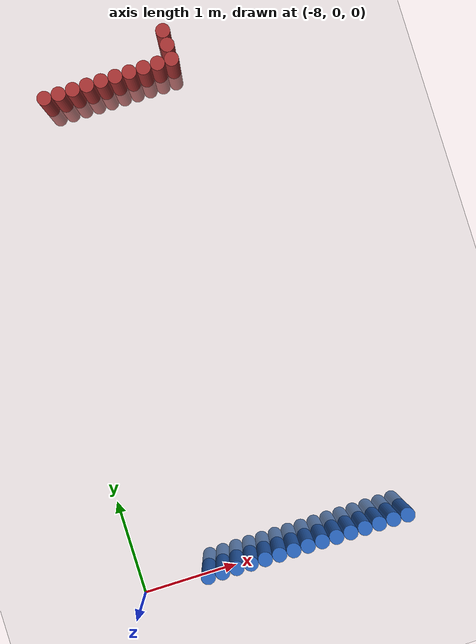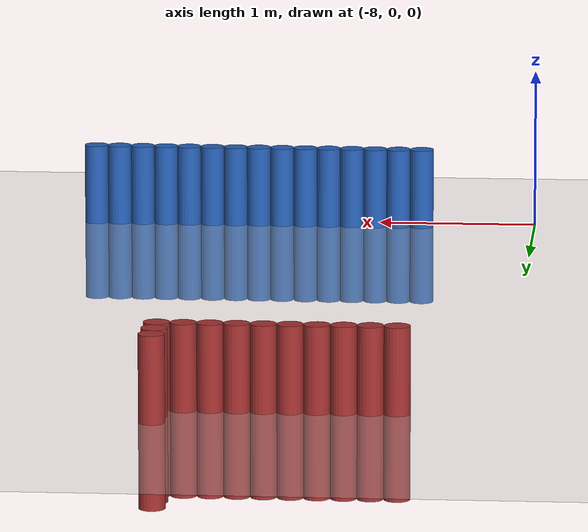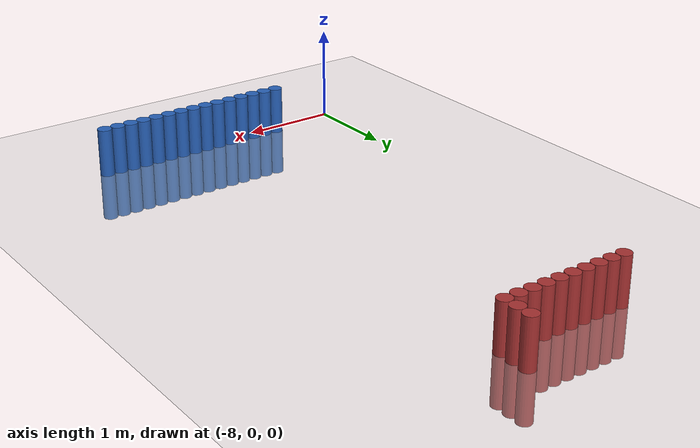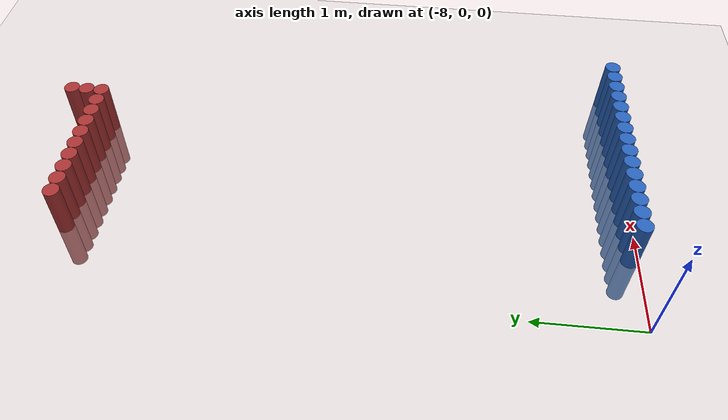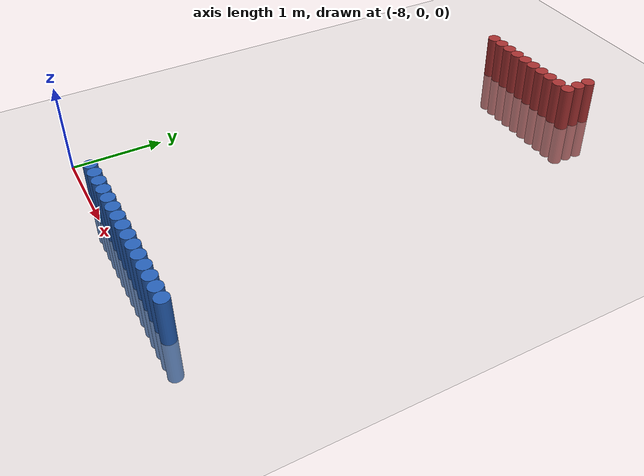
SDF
<sdf version="1.6">
 <world name="default">
  <model name="ground_plane">
   <static>1</static>
   <link name="link">
    <collision name="collision">
     <geometry><plane><normal>0 0 1</normal><size>100 100</size></plane></geometry>
     <surface><friction><ode><mu>100</mu><mu2>50</mu2></ode></friction></surface>
    </collision>
    <visual name="visual">
     <cast_shadows>0</cast_shadows>
     <geometry><plane><normal>0 0 1</normal><size>100 100</size></plane></geometry>
     <material>
      <script><uri>file://media/materials/scripts/gazebo.material</uri><name>Gazebo/Grey</name></script>
     </material>
    </visual>
   </link>
  </model>
  <model name="unit_cylinder_34">
   <static>1</static>
   <pose>-5.175000 0.075000 0.000000 0.000000 0.000000 0.000000</pose>
   <link name="link">
    <inertial>
     <mass>1</mass>
     <inertia><ixx>0.145833</ixx><ixy>0</ixy><ixz>0</ixz><iyy>0.145833</iyy><iyz>0</iyz><izz>0.125</izz></inertia>
    </inertial>
    <collision name="collision">
     <geometry><cylinder><radius>0.075000</radius><length>1</length></cylinder></geometry>
    </collision>
    <visual name="visual">
     <geometry><cylinder><radius>0.075000</radius><length>1</length></cylinder></geometry>
     <material>
      <ambient>0.152000 0.379000 0.720000 1</ambient>
      <diffuse>0.152000 0.379000 0.720000 1</diffuse>
     </material>
     <material>
      <script><name>Gazebo/Grey</name><uri>file://media/materials/scripts/gazebo.material</uri></script>
     </material>
    </visual>
   </link>
  </model>
  <model name="unit_cylinder_35">
   <static>1</static>
   <pose>-5.325000 0.075000 0.000000 0.000000 0.000000 0.000000</pose>
   <link name="link">
    <inertial>
     <mass>1</mass>
     <inertia><ixx>0.145833</ixx><ixy>0</ixy><ixz>0</ixz><iyy>0.145833</iyy><iyz>0</iyz><izz>0.125</izz></inertia>
    </inertial>
    <collision name="collision">
     <geometry><cylinder><radius>0.075000</radius><length>1</length></cylinder></geometry>
    </collision>
    <visual name="visual">
     <geometry><cylinder><radius>0.075000</radius><length>1</length></cylinder></geometry>
     <material>
      <ambient>0.152000 0.379000 0.720000 1</ambient>
      <diffuse>0.152000 0.379000 0.720000 1</diffuse>
     </material>
     <material>
      <script><name>Gazebo/Grey</name><uri>file://media/materials/scripts/gazebo.material</uri></script>
     </material>
    </visual>
   </link>
  </model>
  <model name="unit_cylinder_36">
   <static>1</static>
   <pose>-5.475000 0.075000 0.000000 0.000000 0.000000 0.000000</pose>
   <link name="link">
    <inertial>
     <mass>1</mass>
     <inertia><ixx>0.145833</ixx><ixy>0</ixy><ixz>0</ixz><iyy>0.145833</iyy><iyz>0</iyz><izz>0.125</izz></inertia>
    </inertial>
    <collision name="collision">
     <geometry><cylinder><radius>0.075000</radius><length>1</length></cylinder></geometry>
    </collision>
    <visual name="visual">
     <geometry><cylinder><radius>0.075000</radius><length>1</length></cylinder></geometry>
     <material>
      <ambient>0.152000 0.379000 0.720000 1</ambient>
      <diffuse>0.152000 0.379000 0.720000 1</diffuse>
     </material>
     <material>
      <script><name>Gazebo/Grey</name><uri>file://media/materials/scripts/gazebo.material</uri></script>
     </material>
    </visual>
   </link>
  </model>
  <model name="unit_cylinder_37">
   <static>1</static>
   <pose>-5.625000 0.075000 0.000000 0.000000 0.000000 0.000000</pose>
   <link name="link">
    <inertial>
     <mass>1</mass>
     <inertia><ixx>0.145833</ixx><ixy>0</ixy><ixz>0</ixz><iyy>0.145833</iyy><iyz>0</iyz><izz>0.125</izz></inertia>
    </inertial>
    <collision name="collision">
     <geometry><cylinder><radius>0.075000</radius><length>1</length></cylinder></geometry>
    </collision>
    <visual name="visual">
     <geometry><cylinder><radius>0.075000</radius><length>1</length></cylinder></geometry>
     <material>
      <ambient>0.152000 0.379000 0.720000 1</ambient>
      <diffuse>0.152000 0.379000 0.720000 1</diffuse>
     </material>
     <material>
      <script><name>Gazebo/Grey</name><uri>file://media/materials/scripts/gazebo.material</uri></script>
     </material>
    </visual>
   </link>
  </model>
  <model name="unit_cylinder_38">
   <static>1</static>
   <pose>-5.775000 0.075000 0.000000 0.000000 0.000000 0.000000</pose>
   <link name="link">
    <inertial>
     <mass>1</mass>
     <inertia><ixx>0.145833</ixx><ixy>0</ixy><ixz>0</ixz><iyy>0.145833</iyy><iyz>0</iyz><izz>0.125</izz></inertia>
    </inertial>
    <collision name="collision">
     <geometry><cylinder><radius>0.075000</radius><length>1</length></cylinder></geometry>
    </collision>
    <visual name="visual">
     <geometry><cylinder><radius>0.075000</radius><length>1</length></cylinder></geometry>
     <material>
      <ambient>0.152000 0.379000 0.720000 1</ambient>
      <diffuse>0.152000 0.379000 0.720000 1</diffuse>
     </material>
     <material>
      <script><name>Gazebo/Grey</name><uri>file://media/materials/scripts/gazebo.material</uri></script>
     </material>
    </visual>
   </link>
  </model>
  <model name="unit_cylinder_39">
   <static>1</static>
   <pose>-5.925000 0.075000 0.000000 0.000000 0.000000 0.000000</pose>
   <link name="link">
    <inertial>
     <mass>1</mass>
     <inertia><ixx>0.145833</ixx><ixy>0</ixy><ixz>0</ixz><iyy>0.145833</iyy><iyz>0</iyz><izz>0.125</izz></inertia>
    </inertial>
    <collision name="collision">
     <geometry><cylinder><radius>0.075000</radius><length>1</length></cylinder></geometry>
    </collision>
    <visual name="visual">
     <geometry><cylinder><radius>0.075000</radius><length>1</length></cylinder></geometry>
     <material>
      <ambient>0.152000 0.379000 0.720000 1</ambient>
      <diffuse>0.152000 0.379000 0.720000 1</diffuse>
     </material>
     <material>
      <script><name>Gazebo/Grey</name><uri>file://media/materials/scripts/gazebo.material</uri></script>
     </material>
    </visual>
   </link>
  </model>
  <model name="unit_cylinder_40">
   <static>1</static>
   <pose>-6.075000 0.075000 0.000000 0.000000 0.000000 0.000000</pose>
   <link name="link">
    <inertial>
     <mass>1</mass>
     <inertia><ixx>0.145833</ixx><ixy>0</ixy><ixz>0</ixz><iyy>0.145833</iyy><iyz>0</iyz><izz>0.125</izz></inertia>
    </inertial>
    <collision name="collision">
     <geometry><cylinder><radius>0.075000</radius><length>1</length></cylinder></geometry>
    </collision>
    <visual name="visual">
     <geometry><cylinder><radius>0.075000</radius><length>1</length></cylinder></geometry>
     <material>
      <ambient>0.152000 0.379000 0.720000 1</ambient>
      <diffuse>0.152000 0.379000 0.720000 1</diffuse>
     </material>
     <material>
      <script><name>Gazebo/Grey</name><uri>file://media/materials/scripts/gazebo.material</uri></script>
     </material>
    </visual>
   </link>
  </model>
  <model name="unit_cylinder_41">
   <static>1</static>
   <pose>-6.225000 0.075000 0.000000 0.000000 0.000000 0.000000</pose>
   <link name="link">
    <inertial>
     <mass>1</mass>
     <inertia><ixx>0.145833</ixx><ixy>0</ixy><ixz>0</ixz><iyy>0.145833</iyy><iyz>0</iyz><izz>0.125</izz></inertia>
    </inertial>
    <collision name="collision">
     <geometry><cylinder><radius>0.075000</radius><length>1</length></cylinder></geometry>
    </collision>
    <visual name="visual">
     <geometry><cylinder><radius>0.075000</radius><length>1</length></cylinder></geometry>
     <material>
      <ambient>0.152000 0.379000 0.720000 1</ambient>
      <diffuse>0.152000 0.379000 0.720000 1</diffuse>
     </material>
     <material>
      <script><name>Gazebo/Grey</name><uri>file://media/materials/scripts/gazebo.material</uri></script>
     </material>
    </visual>
   </link>
  </model>
  <model name="unit_cylinder_42">
   <static>1</static>
   <pose>-6.375000 0.075000 0.000000 0.000000 0.000000 0.000000</pose>
   <link name="link">
    <inertial>
     <mass>1</mass>
     <inertia><ixx>0.145833</ixx><ixy>0</ixy><ixz>0</ixz><iyy>0.145833</iyy><iyz>0</iyz><izz>0.125</izz></inertia>
    </inertial>
    <collision name="collision">
     <geometry><cylinder><radius>0.075000</radius><length>1</length></cylinder></geometry>
    </collision>
    <visual name="visual">
     <geometry><cylinder><radius>0.075000</radius><length>1</length></cylinder></geometry>
     <material>
      <ambient>0.152000 0.379000 0.720000 1</ambient>
      <diffuse>0.152000 0.379000 0.720000 1</diffuse>
     </material>
     <material>
      <script><name>Gazebo/Grey</name><uri>file://media/materials/scripts/gazebo.material</uri></script>
     </material>
    </visual>
   </link>
  </model>
  <model name="unit_cylinder_43">
   <static>1</static>
   <pose>-6.525000 0.075000 0.000000 0.000000 0.000000 0.000000</pose>
   <link name="link">
    <inertial>
     <mass>1</mass>
     <inertia><ixx>0.145833</ixx><ixy>0</ixy><ixz>0</ixz><iyy>0.145833</iyy><iyz>0</iyz><izz>0.125</izz></inertia>
    </inertial>
    <collision name="collision">
     <geometry><cylinder><radius>0.075000</radius><length>1</length></cylinder></geometry>
    </collision>
    <visual name="visual">
     <geometry><cylinder><radius>0.075000</radius><length>1</length></cylinder></geometry>
     <material>
      <ambient>0.152000 0.379000 0.720000 1</ambient>
      <diffuse>0.152000 0.379000 0.720000 1</diffuse>
     </material>
     <material>
      <script><name>Gazebo/Grey</name><uri>file://media/materials/scripts/gazebo.material</uri></script>
     </material>
    </visual>
   </link>
  </model>
  <model name="unit_cylinder_44">
   <static>1</static>
   <pose>-6.675000 0.075000 0.000000 0.000000 0.000000 0.000000</pose>
   <link name="link">
    <inertial>
     <mass>1</mass>
     <inertia><ixx>0.145833</ixx><ixy>0</ixy><ixz>0</ixz><iyy>0.145833</iyy><iyz>0</iyz><izz>0.125</izz></inertia>
    </inertial>
    <collision name="collision">
     <geometry><cylinder><radius>0.075000</radius><length>1</length></cylinder></geometry>
    </collision>
    <visual name="visual">
     <geometry><cylinder><radius>0.075000</radius><length>1</length></cylinder></geometry>
     <material>
      <ambient>0.152000 0.379000 0.720000 1</ambient>
      <diffuse>0.152000 0.379000 0.720000 1</diffuse>
     </material>
     <material>
      <script><name>Gazebo/Grey</name><uri>file://media/materials/scripts/gazebo.material</uri></script>
     </material>
    </visual>
   </link>
  </model>
  <model name="unit_cylinder_45">
   <static>1</static>
   <pose>-6.825000 0.075000 0.000000 0.000000 0.000000 0.000000</pose>
   <link name="link">
    <inertial>
     <mass>1</mass>
     <inertia><ixx>0.145833</ixx><ixy>0</ixy><ixz>0</ixz><iyy>0.145833</iyy><iyz>0</iyz><izz>0.125</izz></inertia>
    </inertial>
    <collision name="collision">
     <geometry><cylinder><radius>0.075000</radius><length>1</length></cylinder></geometry>
    </collision>
    <visual name="visual">
     <geometry><cylinder><radius>0.075000</radius><length>1</length></cylinder></geometry>
     <material>
      <ambient>0.152000 0.379000 0.720000 1</ambient>
      <diffuse>0.152000 0.379000 0.720000 1</diffuse>
     </material>
     <material>
      <script><name>Gazebo/Grey</name><uri>file://media/materials/scripts/gazebo.material</uri></script>
     </material>
    </visual>
   </link>
  </model>
  <model name="unit_cylinder_46">
   <static>1</static>
   <pose>-6.975000 0.075000 0.000000 0.000000 0.000000 0.000000</pose>
   <link name="link">
    <inertial>
     <mass>1</mass>
     <inertia><ixx>0.145833</ixx><ixy>0</ixy><ixz>0</ixz><iyy>0.145833</iyy><iyz>0</iyz><izz>0.125</izz></inertia>
    </inertial>
    <collision name="collision">
     <geometry><cylinder><radius>0.075000</radius><length>1</length></cylinder></geometry>
    </collision>
    <visual name="visual">
     <geometry><cylinder><radius>0.075000</radius><length>1</length></cylinder></geometry>
     <material>
      <ambient>0.152000 0.379000 0.720000 1</ambient>
      <diffuse>0.152000 0.379000 0.720000 1</diffuse>
     </material>
     <material>
      <script><name>Gazebo/Grey</name><uri>file://media/materials/scripts/gazebo.material</uri></script>
     </material>
    </visual>
   </link>
  </model>
  <model name="unit_cylinder_47">
   <static>1</static>
   <pose>-7.125000 0.075000 0.000000 0.000000 0.000000 0.000000</pose>
   <link name="link">
    <inertial>
     <mass>1</mass>
     <inertia><ixx>0.145833</ixx><ixy>0</ixy><ixz>0</ixz><iyy>0.145833</iyy><iyz>0</iyz><izz>0.125</izz></inertia>
    </inertial>
    <collision name="collision">
     <geometry><cylinder><radius>0.075000</radius><length>1</length></cylinder></geometry>
    </collision>
    <visual name="visual">
     <geometry><cylinder><radius>0.075000</radius><length>1</length></cylinder></geometry>
     <material>
      <ambient>0.152000 0.379000 0.720000 1</ambient>
      <diffuse>0.152000 0.379000 0.720000 1</diffuse>
     </material>
     <material>
      <script><name>Gazebo/Grey</name><uri>file://media/materials/scripts/gazebo.material</uri></script>
     </material>
    </visual>
   </link>
  </model>
  <model name="unit_cylinder_48">
   <static>1</static>
   <pose>-7.275000 0.075000 0.000000 0.000000 0.000000 0.000000</pose>
   <link name="link">
    <inertial>
     <mass>1</mass>
     <inertia><ixx>0.145833</ixx><ixy>0</ixy><ixz>0</ixz><iyy>0.145833</iyy><iyz>0</iyz><izz>0.125</izz></inertia>
    </inertial>
    <collision name="collision">
     <geometry><cylinder><radius>0.075000</radius><length>1</length></cylinder></geometry>
    </collision>
    <visual name="visual">
     <geometry><cylinder><radius>0.075000</radius><length>1</length></cylinder></geometry>
     <material>
      <ambient>0.152000 0.379000 0.720000 1</ambient>
      <diffuse>0.152000 0.379000 0.720000 1</diffuse>
     </material>
     <material>
      <script><name>Gazebo/Grey</name><uri>file://media/materials/scripts/gazebo.material</uri></script>
     </material>
    </visual>
   </link>
  </model>
  <model name="unit_cylinder_173">
   <static>1</static>
   <pose>-7.425000 5.175000 0.000000 0.000000 0.000000 0.000000</pose>
   <link name="link">
    <inertial>
     <mass>1</mass>
     <inertia><ixx>0.145833</ixx><ixy>0</ixy><ixz>0</ixz><iyy>0.145833</iyy><iyz>0</iyz><izz>0.125</izz></inertia>
    </inertial>
    <collision name="collision">
     <geometry><cylinder><radius>0.075000</radius><length>1</length></cylinder></geometry>
    </collision>
    <visual name="visual">
     <geometry><cylinder><radius>0.075000</radius><length>1</length></cylinder></geometry>
     <material>
      <ambient>0.648000 0.192000 0.192000 1</ambient>
      <diffuse>0.648000 0.192000 0.192000 1</diffuse>
     </material>
     <material>
      <script><name>Gazebo/Grey</name><uri>file://media/materials/scripts/gazebo.material</uri></script>
     </material>
    </visual>
   </link>
  </model>
  <model name="unit_cylinder_175">
   <static>1</static>
   <pose>-7.275000 5.175000 0.000000 0.000000 0.000000 0.000000</pose>
   <link name="link">
    <inertial>
     <mass>1</mass>
     <inertia><ixx>0.145833</ixx><ixy>0</ixy><ixz>0</ixz><iyy>0.145833</iyy><iyz>0</iyz><izz>0.125</izz></inertia>
    </inertial>
    <collision name="collision">
     <geometry><cylinder><radius>0.075000</radius><length>1</length></cylinder></geometry>
    </collision>
    <visual name="visual">
     <geometry><cylinder><radius>0.075000</radius><length>1</length></cylinder></geometry>
     <material>
      <ambient>0.648000 0.192000 0.192000 1</ambient>
      <diffuse>0.648000 0.192000 0.192000 1</diffuse>
     </material>
     <material>
      <script><name>Gazebo/Grey</name><uri>file://media/materials/scripts/gazebo.material</uri></script>
     </material>
    </visual>
   </link>
  </model>
  <model name="unit_cylinder_177">
   <static>1</static>
   <pose>-7.125000 5.175000 0.000000 0.000000 0.000000 0.000000</pose>
   <link name="link">
    <inertial>
     <mass>1</mass>
     <inertia><ixx>0.145833</ixx><ixy>0</ixy><ixz>0</ixz><iyy>0.145833</iyy><iyz>0</iyz><izz>0.125</izz></inertia>
    </inertial>
    <collision name="collision">
     <geometry><cylinder><radius>0.075000</radius><length>1</length></cylinder></geometry>
    </collision>
    <visual name="visual">
     <geometry><cylinder><radius>0.075000</radius><length>1</length></cylinder></geometry>
     <material>
      <ambient>0.648000 0.192000 0.192000 1</ambient>
      <diffuse>0.648000 0.192000 0.192000 1</diffuse>
     </material>
     <material>
      <script><name>Gazebo/Grey</name><uri>file://media/materials/scripts/gazebo.material</uri></script>
     </material>
    </visual>
   </link>
  </model>
  <model name="unit_cylinder_179">
   <static>1</static>
   <pose>-6.975000 5.175000 0.000000 0.000000 0.000000 0.000000</pose>
   <link name="link">
    <inertial>
     <mass>1</mass>
     <inertia><ixx>0.145833</ixx><ixy>0</ixy><ixz>0</ixz><iyy>0.145833</iyy><iyz>0</iyz><izz>0.125</izz></inertia>
    </inertial>
    <collision name="collision">
     <geometry><cylinder><radius>0.075000</radius><length>1</length></cylinder></geometry>
    </collision>
    <visual name="visual">
     <geometry><cylinder><radius>0.075000</radius><length>1</length></cylinder></geometry>
     <material>
      <ambient>0.648000 0.192000 0.192000 1</ambient>
      <diffuse>0.648000 0.192000 0.192000 1</diffuse>
     </material>
     <material>
      <script><name>Gazebo/Grey</name><uri>file://media/materials/scripts/gazebo.material</uri></script>
     </material>
    </visual>
   </link>
  </model>
  <model name="unit_cylinder_181">
   <static>1</static>
   <pose>-6.825000 5.175000 0.000000 0.000000 0.000000 0.000000</pose>
   <link name="link">
    <inertial>
     <mass>1</mass>
     <inertia><ixx>0.145833</ixx><ixy>0</ixy><ixz>0</ixz><iyy>0.145833</iyy><iyz>0</iyz><izz>0.125</izz></inertia>
    </inertial>
    <collision name="collision">
     <geometry><cylinder><radius>0.075000</radius><length>1</length></cylinder></geometry>
    </collision>
    <visual name="visual">
     <geometry><cylinder><radius>0.075000</radius><length>1</length></cylinder></geometry>
     <material>
      <ambient>0.648000 0.192000 0.192000 1</ambient>
      <diffuse>0.648000 0.192000 0.192000 1</diffuse>
     </material>
     <material>
      <script><name>Gazebo/Grey</name><uri>file://media/materials/scripts/gazebo.material</uri></script>
     </material>
    </visual>
   </link>
  </model>
  <model name="unit_cylinder_183">
   <static>1</static>
   <pose>-6.675000 5.175000 0.000000 0.000000 0.000000 0.000000</pose>
   <link name="link">
    <inertial>
     <mass>1</mass>
     <inertia><ixx>0.145833</ixx><ixy>0</ixy><ixz>0</ixz><iyy>0.145833</iyy><iyz>0</iyz><izz>0.125</izz></inertia>
    </inertial>
    <collision name="collision">
     <geometry><cylinder><radius>0.075000</radius><length>1</length></cylinder></geometry>
    </collision>
    <visual name="visual">
     <geometry><cylinder><radius>0.075000</radius><length>1</length></cylinder></geometry>
     <material>
      <ambient>0.648000 0.192000 0.192000 1</ambient>
      <diffuse>0.648000 0.192000 0.192000 1</diffuse>
     </material>
     <material>
      <script><name>Gazebo/Grey</name><uri>file://media/materials/scripts/gazebo.material</uri></script>
     </material>
    </visual>
   </link>
  </model>
  <model name="unit_cylinder_185">
   <static>1</static>
   <pose>-6.525000 5.175000 0.000000 0.000000 0.000000 0.000000</pose>
   <link name="link">
    <inertial>
     <mass>1</mass>
     <inertia><ixx>0.145833</ixx><ixy>0</ixy><ixz>0</ixz><iyy>0.145833</iyy><iyz>0</iyz><izz>0.125</izz></inertia>
    </inertial>
    <collision name="collision">
     <geometry><cylinder><radius>0.075000</radius><length>1</length></cylinder></geometry>
    </collision>
    <visual name="visual">
     <geometry><cylinder><radius>0.075000</radius><length>1</length></cylinder></geometry>
     <material>
      <ambient>0.648000 0.192000 0.192000 1</ambient>
      <diffuse>0.648000 0.192000 0.192000 1</diffuse>
     </material>
     <material>
      <script><name>Gazebo/Grey</name><uri>file://media/materials/scripts/gazebo.material</uri></script>
     </material>
    </visual>
   </link>
  </model>
  <model name="unit_cylinder_187">
   <static>1</static>
   <pose>-6.375000 5.175000 0.000000 0.000000 0.000000 0.000000</pose>
   <link name="link">
    <inertial>
     <mass>1</mass>
     <inertia><ixx>0.145833</ixx><ixy>0</ixy><ixz>0</ixz><iyy>0.145833</iyy><iyz>0</iyz><izz>0.125</izz></inertia>
    </inertial>
    <collision name="collision">
     <geometry><cylinder><radius>0.075000</radius><length>1</length></cylinder></geometry>
    </collision>
    <visual name="visual">
     <geometry><cylinder><radius>0.075000</radius><length>1</length></cylinder></geometry>
     <material>
      <ambient>0.648000 0.192000 0.192000 1</ambient>
      <diffuse>0.648000 0.192000 0.192000 1</diffuse>
     </material>
     <material>
      <script><name>Gazebo/Grey</name><uri>file://media/materials/scripts/gazebo.material</uri></script>
     </material>
    </visual>
   </link>
  </model>
  <model name="unit_cylinder_189">
   <static>1</static>
   <pose>-6.225000 5.175000 0.000000 0.000000 0.000000 0.000000</pose>
   <link name="link">
    <inertial>
     <mass>1</mass>
     <inertia><ixx>0.145833</ixx><ixy>0</ixy><ixz>0</ixz><iyy>0.145833</iyy><iyz>0</iyz><izz>0.125</izz></inertia>
    </inertial>
    <collision name="collision">
     <geometry><cylinder><radius>0.075000</radius><length>1</length></cylinder></geometry>
    </collision>
    <visual name="visual">
     <geometry><cylinder><radius>0.075000</radius><length>1</length></cylinder></geometry>
     <material>
      <ambient>0.648000 0.192000 0.192000 1</ambient>
      <diffuse>0.648000 0.192000 0.192000 1</diffuse>
     </material>
     <material>
      <script><name>Gazebo/Grey</name><uri>file://media/materials/scripts/gazebo.material</uri></script>
     </material>
    </visual>
   </link>
  </model>
  <model name="unit_cylinder_191">
   <static>1</static>
   <pose>-6.075000 5.175000 0.000000 0.000000 0.000000 0.000000</pose>
   <link name="link">
    <inertial>
     <mass>1</mass>
     <inertia><ixx>0.145833</ixx><ixy>0</ixy><ixz>0</ixz><iyy>0.145833</iyy><iyz>0</iyz><izz>0.125</izz></inertia>
    </inertial>
    <collision name="collision">
     <geometry><cylinder><radius>0.075000</radius><length>1</length></cylinder></geometry>
    </collision>
    <visual name="visual">
     <geometry><cylinder><radius>0.075000</radius><length>1</length></cylinder></geometry>
     <material>
      <ambient>0.648000 0.192000 0.192000 1</ambient>
      <diffuse>0.648000 0.192000 0.192000 1</diffuse>
     </material>
     <material>
      <script><name>Gazebo/Grey</name><uri>file://media/materials/scripts/gazebo.material</uri></script>
     </material>
    </visual>
   </link>
  </model>
  <model name="unit_cylinder_192">
   <static>1</static>
   <pose>-6.075000 5.325000 0.000000 0.000000 0.000000 0.000000</pose>
   <link name="link">
    <inertial>
     <mass>1</mass>
     <inertia><ixx>0.145833</ixx><ixy>0</ixy><ixz>0</ixz><iyy>0.145833</iyy><iyz>0</iyz><izz>0.125</izz></inertia>
    </inertial>
    <collision name="collision">
     <geometry><cylinder><radius>0.075000</radius><length>1</length></cylinder></geometry>
    </collision>
    <visual name="visual">
     <geometry><cylinder><radius>0.075000</radius><length>1</length></cylinder></geometry>
     <material>
      <ambient>0.648000 0.192000 0.192000 1</ambient>
      <diffuse>0.648000 0.192000 0.192000 1</diffuse>
     </material>
     <material>
      <script><name>Gazebo/Grey</name><uri>file://media/materials/scripts/gazebo.material</uri></script>
     </material>
    </visual>
   </link>
  </model>
  <model name="unit_cylinder_193">
   <static>1</static>
   <pose>-6.075000 5.475000 0.000000 0.000000 0.000000 0.000000</pose>
   <link name="link">
    <inertial>
     <mass>1</mass>
     <inertia><ixx>0.145833</ixx><ixy>0</ixy><ixz>0</ixz><iyy>0.145833</iyy><iyz>0</iyz><izz>0.125</izz></inertia>
    </inertial>
    <collision name="collision">
     <geometry><cylinder><radius>0.075000</radius><length>1</length></cylinder></geometry>
    </collision>
    <visual name="visual">
     <geometry><cylinder><radius>0.075000</radius><length>1</length></cylinder></geometry>
     <material>
      <ambient>0.648000 0.192000 0.192000 1</ambient>
      <diffuse>0.648000 0.192000 0.192000 1</diffuse>
     </material>
     <material>
      <script><name>Gazebo/Grey</name><uri>file://media/materials/scripts/gazebo.material</uri></script>
     </material>
    </visual>
   </link>
  </model>
 </world>
</sdf>
